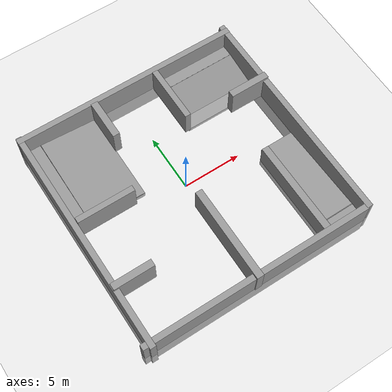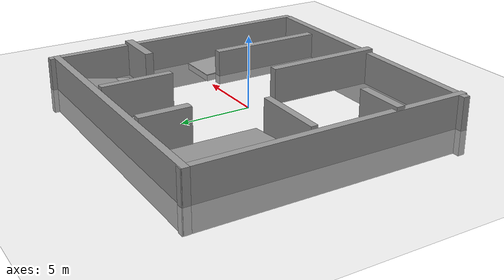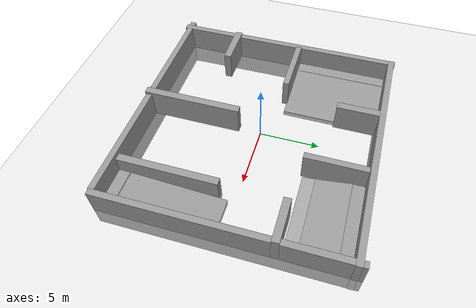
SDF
<sdf version="1.7">
 <world name="default">
  <light name="sun" type="directional">
   <pose>0 0 10 0 -0 0</pose>
   <diffuse>0.8 0.8 0.8 1</diffuse>
   <specular>0.2 0.2 0.2 1</specular>
   <attenuation>
    <range>1000</range>
    <constant>0.9</constant>
    <linear>0.01</linear>
    <quadratic>0.001</quadratic>
   </attenuation>
   <direction>-0.5 0.1 -0.9</direction>
   <spot><inner_angle>0</inner_angle><outer_angle>0</outer_angle><falloff>0</falloff></spot>
  </light>
  <model name="ground_plane">
   <static>1</static>
   <link name="link">
    <collision name="collision">
     <geometry><plane><normal>0 0 1</normal><size>100 100</size></plane></geometry>
     <surface>
      <contact><collide_bitmask>65535</collide_bitmask></contact>
      <friction><ode><mu>50</mu><mu2>50</mu2></ode></friction>
     </surface>
     <max_contacts>50</max_contacts>
    </collision>
    <visual name="visual">
     <cast_shadows>0</cast_shadows>
     <geometry><plane><normal>0 0 1</normal><size>100 100</size></plane></geometry>
     <material>
      <script><uri>file://media/materials/scripts/gazebo.material</uri><name>Gazebo/Grey</name></script>
     </material>
    </visual>
   </link>
  </model>
  <gravity>0 0 -9.8</gravity>
  <magnetic_field>6e-06 2.3e-05 -4.2e-05</magnetic_field>
  <atmosphere type="adiabatic"/>
  <physics type="ode">
   <max_step_size>0.001</max_step_size>
   <real_time_factor>1</real_time_factor>
   <real_time_update_rate>1000</real_time_update_rate>
  </physics>
  <scene><ambient>0.4 0.4 0.4 1</ambient><background>0.7 0.7 0.7 1</background><shadows>1</shadows></scene>
  <spherical_coordinates>
   <surface_model>EARTH_WGS84</surface_model>
   <latitude_deg>0</latitude_deg>
   <longitude_deg>0</longitude_deg>
   <elevation>0</elevation>
   <heading_deg>0</heading_deg>
  </spherical_coordinates>
  <model name="unit_box_4_0">
   <static>1</static>
   <link name="link">
    <inertial>
     <mass>1</mass>
     <inertia>
      <ixx>0.166667</ixx>
      <ixy>0</ixy>
      <ixz>0</ixz>
      <iyy>0.166667</iyy>
      <iyz>0</iyz>
      <izz>0.166667</izz>
     </inertia>
    </inertial>
    <visual name="visual">
     <geometry><box><size>3 1 0.5</size></box></geometry>
     <material>
      <script><name>Gazebo/Grey</name><uri>file://media/materials/scripts/gazebo.material</uri></script>
      <shader type="pixel"><normal_map>__default__</normal_map></shader>
      <ambient>0.3 0.3 0.3 1</ambient>
      <diffuse>0.7 0.7 0.7 1</diffuse>
      <specular>0.01 0.01 0.01 1</specular>
      <emissive>0 0 0 1</emissive>
     </material>
    </visual>
    <collision name="collision">
     <max_contacts>50</max_contacts>
     <geometry><box><size>3 1 0.5</size></box></geometry>
     <surface>
      <friction>
       <ode><mu>50</mu><mu2>50</mu2><fdir1>0 0 0</fdir1><slip1>0</slip1><slip2>0</slip2></ode>
       <torsional>
        <coefficient>1</coefficient>
        <patch_radius>0</patch_radius>
        <surface_radius>0</surface_radius>
        <use_patch_radius>1</use_patch_radius>
        <ode><slip>0</slip></ode>
       </torsional>
      </friction>
      <bounce><restitution_coefficient>0</restitution_coefficient><threshold>1e+06</threshold></bounce>
      <contact>
       <collide_without_contact>0</collide_without_contact>
       <collide_without_contact_bitmask>1</collide_without_contact_bitmask>
       <collide_bitmask>1</collide_bitmask>
       <ode>
        <soft_cfm>0</soft_cfm>
        <soft_erp>0.2</soft_erp>
        <kp>1e+13</kp>
        <kd>1</kd>
        <max_vel>0.01</max_vel>
        <min_depth>0</min_depth>
       </ode>
       <bullet>
        <split_impulse>1</split_impulse>
        <split_impulse_penetration_threshold>-0.01</split_impulse_penetration_threshold>
        <soft_cfm>0</soft_cfm>
        <soft_erp>0.2</soft_erp>
        <kp>1e+13</kp>
        <kd>1</kd>
       </bullet>
      </contact>
     </surface>
    </collision>
   </link>
   <static>1</static>
   <pose>8.41088 -9.00456 0.250005 -1e-05 0 0</pose>
  </model>
  <model name="unit_box_up1">
   <link name="link">
    <inertial>
     <mass>1</mass>
     <inertia>
      <ixx>0.166667</ixx>
      <ixy>0</ixy>
      <ixz>0</ixz>
      <iyy>0.166667</iyy>
      <iyz>0</iyz>
      <izz>0.166667</izz>
     </inertia>
    </inertial>
    <visual name="visual">
     <geometry><box><size>3 8 0.5</size></box></geometry>
     <material>
      <script><name>Gazebo/Grey</name><uri>file://media/materials/scripts/gazebo.material</uri></script>
      <shader type="pixel"><normal_map>__default__</normal_map></shader>
      <ambient>0.3 0.3 0.3 1</ambient>
      <diffuse>0.7 0.7 0.7 1</diffuse>
      <specular>0.01 0.01 0.01 1</specular>
      <emissive>0 0 0 1</emissive>
     </material>
    </visual>
    <collision name="collision">
     <max_contacts>50</max_contacts>
     <geometry><box><size>3 8 0.5</size></box></geometry>
     <surface>
      <friction>
       <ode><mu>50</mu><mu2>50</mu2><fdir1>0 0 0</fdir1><slip1>0</slip1><slip2>0</slip2></ode>
       <torsional>
        <coefficient>1</coefficient>
        <patch_radius>0</patch_radius>
        <surface_radius>0</surface_radius>
        <use_patch_radius>1</use_patch_radius>
        <ode><slip>0</slip></ode>
       </torsional>
      </friction>
      <bounce><restitution_coefficient>0</restitution_coefficient><threshold>1e+06</threshold></bounce>
      <contact>
       <collide_without_contact>0</collide_without_contact>
       <collide_without_contact_bitmask>1</collide_without_contact_bitmask>
       <collide_bitmask>1</collide_bitmask>
       <ode>
        <soft_cfm>0</soft_cfm>
        <soft_erp>0.2</soft_erp>
        <kp>1e+13</kp>
        <kd>1</kd>
        <max_vel>0.01</max_vel>
        <min_depth>0</min_depth>
       </ode>
       <bullet>
        <split_impulse>1</split_impulse>
        <split_impulse_penetration_threshold>-0.01</split_impulse_penetration_threshold>
        <soft_cfm>0</soft_cfm>
        <soft_erp>0.2</soft_erp>
        <kp>1e+13</kp>
        <kd>1</kd>
       </bullet>
      </contact>
     </surface>
    </collision>
   </link>
   <static>1</static>
   <pose>8.41177 -4.6 0.002881 -0.062458 0 0</pose>
  </model>
  <model name="unit_box_wall">
   <link name="link">
    <inertial>
     <mass>1</mass>
     <inertia>
      <ixx>0.166667</ixx>
      <ixy>0</ixy>
      <ixz>0</ixz>
      <iyy>0.166667</iyy>
      <iyz>0</iyz>
      <izz>0.166667</izz>
     </inertia>
    </inertial>
    <visual name="visual">
     <geometry><box><size>0.5 20 4</size></box></geometry>
     <material>
      <script><name>Gazebo/Grey</name><uri>file://media/materials/scripts/gazebo.material</uri></script>
      <shader type="pixel"><normal_map>__default__</normal_map></shader>
      <ambient>0.3 0.3 0.3 1</ambient>
      <diffuse>0.7 0.7 0.7 1</diffuse>
      <specular>0.01 0.01 0.01 1</specular>
      <emissive>0 0 0 1</emissive>
     </material>
    </visual>
    <collision name="collision">
     <max_contacts>50</max_contacts>
     <geometry><box><size>0.5 20 4</size></box></geometry>
     <surface>
      <friction>
       <ode><mu>50</mu><mu2>50</mu2><fdir1>0 0 0</fdir1><slip1>0</slip1><slip2>0</slip2></ode>
       <torsional>
        <coefficient>1</coefficient>
        <patch_radius>0</patch_radius>
        <surface_radius>0</surface_radius>
        <use_patch_radius>1</use_patch_radius>
        <ode><slip>0</slip></ode>
       </torsional>
      </friction>
      <bounce><restitution_coefficient>0</restitution_coefficient><threshold>1e+06</threshold></bounce>
      <contact>
       <collide_without_contact>0</collide_without_contact>
       <collide_without_contact_bitmask>1</collide_without_contact_bitmask>
       <collide_bitmask>1</collide_bitmask>
       <ode>
        <soft_cfm>0</soft_cfm>
        <soft_erp>0.2</soft_erp>
        <kp>1e+13</kp>
        <kd>1</kd>
        <max_vel>0.01</max_vel>
        <min_depth>0</min_depth>
       </ode>
       <bullet>
        <split_impulse>1</split_impulse>
        <split_impulse_penetration_threshold>-0.01</split_impulse_penetration_threshold>
        <soft_cfm>0</soft_cfm>
        <soft_erp>0.2</soft_erp>
        <kp>1e+13</kp>
        <kd>1</kd>
       </bullet>
      </contact>
     </surface>
    </collision>
   </link>
   <static>1</static>
   <pose>0.012952 -9.73 0.249963 -0 -1e-05 -1.57449</pose>
  </model>
  <model name="unit_box_wall_clone">
   <link name="link">
    <inertial>
     <mass>1</mass>
     <inertia>
      <ixx>0.166667</ixx>
      <ixy>0</ixy>
      <ixz>0</ixz>
      <iyy>0.166667</iyy>
      <iyz>0</iyz>
      <izz>0.166667</izz>
     </inertia>
    </inertial>
    <visual name="visual">
     <geometry><box><size>0.5 20 4</size></box></geometry>
     <material>
      <script><name>Gazebo/Grey</name><uri>file://media/materials/scripts/gazebo.material</uri></script>
      <shader type="pixel"><normal_map>__default__</normal_map></shader>
      <ambient>0.3 0.3 0.3 1</ambient>
      <diffuse>0.7 0.7 0.7 1</diffuse>
      <specular>0.01 0.01 0.01 1</specular>
      <emissive>0 0 0 1</emissive>
     </material>
    </visual>
    <collision name="collision">
     <max_contacts>50</max_contacts>
     <geometry><box><size>0.5 20 4</size></box></geometry>
     <surface>
      <friction>
       <ode><mu>50</mu><mu2>50</mu2><fdir1>0 0 0</fdir1><slip1>0</slip1><slip2>0</slip2></ode>
       <torsional>
        <coefficient>1</coefficient>
        <patch_radius>0</patch_radius>
        <surface_radius>0</surface_radius>
        <use_patch_radius>1</use_patch_radius>
        <ode><slip>0</slip></ode>
       </torsional>
      </friction>
      <bounce><restitution_coefficient>0</restitution_coefficient><threshold>1e+06</threshold></bounce>
      <contact>
       <collide_without_contact>0</collide_without_contact>
       <collide_without_contact_bitmask>1</collide_without_contact_bitmask>
       <collide_bitmask>1</collide_bitmask>
       <ode>
        <soft_cfm>0</soft_cfm>
        <soft_erp>0.2</soft_erp>
        <kp>1e+13</kp>
        <kd>1</kd>
        <max_vel>0.01</max_vel>
        <min_depth>0</min_depth>
       </ode>
       <bullet>
        <split_impulse>1</split_impulse>
        <split_impulse_penetration_threshold>-0.01</split_impulse_penetration_threshold>
        <soft_cfm>0</soft_cfm>
        <soft_erp>0.2</soft_erp>
        <kp>1e+13</kp>
        <kd>1</kd>
       </bullet>
      </contact>
     </surface>
    </collision>
   </link>
   <static>1</static>
   <pose>10.1456 0.068655 0.24996 1e-05 -0 -3.13792</pose>
  </model>
  <model name="unit_box_wall_clone_clone">
   <link name="link">
    <inertial>
     <mass>1</mass>
     <inertia>
      <ixx>0.166667</ixx>
      <ixy>0</ixy>
      <ixz>0</ixz>
      <iyy>0.166667</iyy>
      <iyz>0</iyz>
      <izz>0.166667</izz>
     </inertia>
    </inertial>
    <visual name="visual">
     <geometry><box><size>0.5 20 4</size></box></geometry>
     <material>
      <script><name>Gazebo/Grey</name><uri>file://media/materials/scripts/gazebo.material</uri></script>
      <shader type="pixel"><normal_map>__default__</normal_map></shader>
      <ambient>0.3 0.3 0.3 1</ambient>
      <diffuse>0.7 0.7 0.7 1</diffuse>
      <specular>0.01 0.01 0.01 1</specular>
      <emissive>0 0 0 1</emissive>
     </material>
    </visual>
    <collision name="collision">
     <max_contacts>50</max_contacts>
     <geometry><box><size>0.5 20 4</size></box></geometry>
     <surface>
      <friction>
       <ode><mu>50</mu><mu2>50</mu2><fdir1>0 0 0</fdir1><slip1>0</slip1><slip2>0</slip2></ode>
       <torsional>
        <coefficient>1</coefficient>
        <patch_radius>0</patch_radius>
        <surface_radius>0</surface_radius>
        <use_patch_radius>1</use_patch_radius>
        <ode><slip>0</slip></ode>
       </torsional>
      </friction>
      <bounce><restitution_coefficient>0</restitution_coefficient><threshold>1e+06</threshold></bounce>
      <contact>
       <collide_without_contact>0</collide_without_contact>
       <collide_without_contact_bitmask>1</collide_without_contact_bitmask>
       <collide_bitmask>1</collide_bitmask>
       <ode>
        <soft_cfm>0</soft_cfm>
        <soft_erp>0.2</soft_erp>
        <kp>1e+13</kp>
        <kd>1</kd>
        <max_vel>0.01</max_vel>
        <min_depth>0</min_depth>
       </ode>
       <bullet>
        <split_impulse>1</split_impulse>
        <split_impulse_penetration_threshold>-0.01</split_impulse_penetration_threshold>
        <soft_cfm>0</soft_cfm>
        <soft_erp>0.2</soft_erp>
        <kp>1e+13</kp>
        <kd>1</kd>
       </bullet>
      </contact>
     </surface>
    </collision>
   </link>
   <static>1</static>
   <pose>-9.31128 -0.137348 0.24996 1e-05 -0 -3.13792</pose>
  </model>
  <model name="unit_box_wall_clone_0">
   <link name="link">
    <inertial>
     <mass>1</mass>
     <inertia>
      <ixx>0.166667</ixx>
      <ixy>0</ixy>
      <ixz>0</ixz>
      <iyy>0.166667</iyy>
      <iyz>0</iyz>
      <izz>0.166667</izz>
     </inertia>
    </inertial>
    <visual name="visual">
     <geometry><box><size>0.5 20 4</size></box></geometry>
     <material>
      <script><name>Gazebo/Grey</name><uri>file://media/materials/scripts/gazebo.material</uri></script>
      <shader type="pixel"><normal_map>__default__</normal_map></shader>
      <ambient>0.3 0.3 0.3 1</ambient>
      <diffuse>0.7 0.7 0.7 1</diffuse>
      <specular>0.01 0.01 0.01 1</specular>
      <emissive>0 0 0 1</emissive>
     </material>
    </visual>
    <collision name="collision">
     <max_contacts>50</max_contacts>
     <geometry><box><size>0.5 20 4</size></box></geometry>
     <surface>
      <friction>
       <ode><mu>50</mu><mu2>50</mu2><fdir1>0 0 0</fdir1><slip1>0</slip1><slip2>0</slip2></ode>
       <torsional>
        <coefficient>1</coefficient>
        <patch_radius>0</patch_radius>
        <surface_radius>0</surface_radius>
        <use_patch_radius>1</use_patch_radius>
        <ode><slip>0</slip></ode>
       </torsional>
      </friction>
      <bounce><restitution_coefficient>0</restitution_coefficient><threshold>1e+06</threshold></bounce>
      <contact>
       <collide_without_contact>0</collide_without_contact>
       <collide_without_contact_bitmask>1</collide_without_contact_bitmask>
       <collide_bitmask>1</collide_bitmask>
       <ode>
        <soft_cfm>0</soft_cfm>
        <soft_erp>0.2</soft_erp>
        <kp>1e+13</kp>
        <kd>1</kd>
        <max_vel>0.01</max_vel>
        <min_depth>0</min_depth>
       </ode>
       <bullet>
        <split_impulse>1</split_impulse>
        <split_impulse_penetration_threshold>-0.01</split_impulse_penetration_threshold>
        <soft_cfm>0</soft_cfm>
        <soft_erp>0.2</soft_erp>
        <kp>1e+13</kp>
        <kd>1</kd>
       </bullet>
      </contact>
     </surface>
    </collision>
   </link>
   <static>1</static>
   <pose>0.386484 9.51271 0.249963 -0 -1e-05 -1.57449</pose>
  </model>
  <model name="unit_box_up2">
   <link name="link">
    <inertial>
     <mass>1</mass>
     <inertia>
      <ixx>0.166667</ixx>
      <ixy>0</ixy>
      <ixz>0</ixz>
      <iyy>0.166667</iyy>
      <iyz>0</iyz>
      <izz>0.166667</izz>
     </inertia>
    </inertial>
    <visual name="visual">
     <geometry><box><size>8 5 0.5</size></box></geometry>
     <material>
      <script><name>Gazebo/Grey</name><uri>file://media/materials/scripts/gazebo.material</uri></script>
      <shader type="pixel"><normal_map>__default__</normal_map></shader>
      <ambient>0.3 0.3 0.3 1</ambient>
      <diffuse>0.7 0.7 0.7 1</diffuse>
      <specular>0.01 0.01 0.01 1</specular>
      <emissive>0 0 0 1</emissive>
     </material>
    </visual>
    <collision name="collision">
     <max_contacts>50</max_contacts>
     <geometry><box><size>8 5 0.5</size></box></geometry>
     <surface>
      <friction>
       <ode><mu>50</mu><mu2>50</mu2><fdir1>0 0 0</fdir1><slip1>0</slip1><slip2>0</slip2></ode>
       <torsional>
        <coefficient>1</coefficient>
        <patch_radius>0</patch_radius>
        <surface_radius>0</surface_radius>
        <use_patch_radius>1</use_patch_radius>
        <ode><slip>0</slip></ode>
       </torsional>
      </friction>
      <bounce><restitution_coefficient>0</restitution_coefficient><threshold>1e+06</threshold></bounce>
      <contact>
       <collide_without_contact>0</collide_without_contact>
       <collide_without_contact_bitmask>1</collide_without_contact_bitmask>
       <collide_bitmask>1</collide_bitmask>
       <ode>
        <soft_cfm>0</soft_cfm>
        <soft_erp>0.2</soft_erp>
        <kp>1e+13</kp>
        <kd>1</kd>
        <max_vel>0.01</max_vel>
        <min_depth>0</min_depth>
       </ode>
       <bullet>
        <split_impulse>1</split_impulse>
        <split_impulse_penetration_threshold>-0.01</split_impulse_penetration_threshold>
        <soft_cfm>0</soft_cfm>
        <soft_erp>0.2</soft_erp>
        <kp>1e+13</kp>
        <kd>1</kd>
       </bullet>
      </contact>
     </surface>
    </collision>
   </link>
   <static>1</static>
   <pose>-5.54092 5.2947 0.008517 -0.098066 -1e-05 -1.57449</pose>
  </model>
  <model name="unit_box_0_clone">
   <link name="link">
    <inertial>
     <mass>1</mass>
     <inertia>
      <ixx>0.166667</ixx>
      <ixy>0</ixy>
      <ixz>0</ixz>
      <iyy>0.166667</iyy>
      <iyz>0</iyz>
      <izz>0.166667</izz>
     </inertia>
    </inertial>
    <visual name="visual">
     <geometry><box><size>8 1 0.5</size></box></geometry>
     <material>
      <script><name>Gazebo/Grey</name><uri>file://media/materials/scripts/gazebo.material</uri></script>
      <shader type="pixel"><normal_map>__default__</normal_map></shader>
      <ambient>0.3 0.3 0.3 1</ambient>
      <diffuse>0.7 0.7 0.7 1</diffuse>
      <specular>0.01 0.01 0.01 1</specular>
      <emissive>0 0 0 1</emissive>
     </material>
    </visual>
    <collision name="collision">
     <max_contacts>50</max_contacts>
     <geometry><box><size>8 1 0.5</size></box></geometry>
     <surface>
      <friction>
       <ode><mu>50</mu><mu2>50</mu2><fdir1>0 0 0</fdir1><slip1>0</slip1><slip2>0</slip2></ode>
       <torsional>
        <coefficient>1</coefficient>
        <patch_radius>0</patch_radius>
        <surface_radius>0</surface_radius>
        <use_patch_radius>1</use_patch_radius>
        <ode><slip>0</slip></ode>
       </torsional>
      </friction>
      <bounce><restitution_coefficient>0</restitution_coefficient><threshold>1e+06</threshold></bounce>
      <contact>
       <collide_without_contact>0</collide_without_contact>
       <collide_without_contact_bitmask>1</collide_without_contact_bitmask>
       <collide_bitmask>1</collide_bitmask>
       <ode>
        <soft_cfm>0</soft_cfm>
        <soft_erp>0.2</soft_erp>
        <kp>1e+13</kp>
        <kd>1</kd>
        <max_vel>0.01</max_vel>
        <min_depth>0</min_depth>
       </ode>
       <bullet>
        <split_impulse>1</split_impulse>
        <split_impulse_penetration_threshold>-0.01</split_impulse_penetration_threshold>
        <soft_cfm>0</soft_cfm>
        <soft_erp>0.2</soft_erp>
        <kp>1e+13</kp>
        <kd>1</kd>
       </bullet>
      </contact>
     </surface>
    </collision>
   </link>
   <static>1</static>
   <pose>-8.52278 5.32292 0.249858 -1e-05 -0 1.57</pose>
  </model>
  <model name="unit_box_0">
   <link name="link">
    <inertial>
     <mass>1</mass>
     <inertia>
      <ixx>0.166667</ixx>
      <ixy>0</ixy>
      <ixz>0</ixz>
      <iyy>0.166667</iyy>
      <iyz>0</iyz>
      <izz>0.166667</izz>
     </inertia>
    </inertial>
    <visual name="visual">
     <geometry><box><size>7 1 0.5</size></box></geometry>
     <material>
      <script><name>Gazebo/Grey</name><uri>file://media/materials/scripts/gazebo.material</uri></script>
      <shader type="pixel"><normal_map>__default__</normal_map></shader>
      <ambient>0.3 0.3 0.3 1</ambient>
      <diffuse>0.7 0.7 0.7 1</diffuse>
      <specular>0.01 0.01 0.01 1</specular>
      <emissive>0 0 0 1</emissive>
     </material>
    </visual>
    <collision name="collision">
     <max_contacts>50</max_contacts>
     <geometry><box><size>7 1 0.5</size></box></geometry>
     <surface>
      <friction>
       <ode><mu>50</mu><mu2>50</mu2><fdir1>0 0 0</fdir1><slip1>0</slip1><slip2>0</slip2></ode>
       <torsional>
        <coefficient>1</coefficient>
        <patch_radius>0</patch_radius>
        <surface_radius>0</surface_radius>
        <use_patch_radius>1</use_patch_radius>
        <ode><slip>0</slip></ode>
       </torsional>
      </friction>
      <bounce><restitution_coefficient>0</restitution_coefficient><threshold>1e+06</threshold></bounce>
      <contact>
       <collide_without_contact>0</collide_without_contact>
       <collide_without_contact_bitmask>1</collide_without_contact_bitmask>
       <collide_bitmask>1</collide_bitmask>
       <ode>
        <soft_cfm>0</soft_cfm>
        <soft_erp>0.2</soft_erp>
        <kp>1e+13</kp>
        <kd>1</kd>
        <max_vel>0.01</max_vel>
        <min_depth>0</min_depth>
       </ode>
       <bullet>
        <split_impulse>1</split_impulse>
        <split_impulse_penetration_threshold>-0.01</split_impulse_penetration_threshold>
        <soft_cfm>0</soft_cfm>
        <soft_erp>0.2</soft_erp>
        <kp>1e+13</kp>
        <kd>1</kd>
       </bullet>
      </contact>
     </surface>
    </collision>
   </link>
   <static>1</static>
   <pose>6.68114 8.7452 0.252464 -1e-05 0 0</pose>
  </model>
  <model name="unit_box_slop2">
   <link name="link">
    <inertial>
     <mass>1</mass>
     <inertia>
      <ixx>0.166667</ixx>
      <ixy>0</ixy>
      <ixz>0</ixz>
      <iyy>0.166667</iyy>
      <iyz>0</iyz>
      <izz>0.166667</izz>
     </inertia>
    </inertial>
    <visual name="visual">
     <geometry><box><size>6.75 4 0.5</size></box></geometry>
     <material>
      <script><name>Gazebo/Grey</name><uri>file://media/materials/scripts/gazebo.material</uri></script>
      <shader type="pixel"><normal_map>__default__</normal_map></shader>
      <ambient>0.3 0.3 0.3 1</ambient>
      <diffuse>0.7 0.7 0.7 1</diffuse>
      <specular>0.01 0.01 0.01 1</specular>
      <emissive>0 0 0 1</emissive>
     </material>
    </visual>
    <collision name="collision">
     <max_contacts>50</max_contacts>
     <geometry><box><size>6.75 4 0.5</size></box></geometry>
     <surface>
      <friction>
       <ode><mu>50</mu><mu2>50</mu2><fdir1>0 0 0</fdir1><slip1>0</slip1><slip2>0</slip2></ode>
       <torsional>
        <coefficient>1</coefficient>
        <patch_radius>0</patch_radius>
        <surface_radius>0</surface_radius>
        <use_patch_radius>1</use_patch_radius>
        <ode><slip>0</slip></ode>
       </torsional>
      </friction>
      <bounce><restitution_coefficient>0</restitution_coefficient><threshold>1e+06</threshold></bounce>
      <contact>
       <collide_without_contact>0</collide_without_contact>
       <collide_without_contact_bitmask>1</collide_without_contact_bitmask>
       <collide_bitmask>1</collide_bitmask>
       <ode>
        <soft_cfm>0</soft_cfm>
        <soft_erp>0.2</soft_erp>
        <kp>1e+13</kp>
        <kd>1</kd>
        <max_vel>0.01</max_vel>
        <min_depth>0</min_depth>
       </ode>
       <bullet>
        <split_impulse>1</split_impulse>
        <split_impulse_penetration_threshold>-0.01</split_impulse_penetration_threshold>
        <soft_cfm>0</soft_cfm>
        <soft_erp>0.2</soft_erp>
        <kp>1e+13</kp>
        <kd>1</kd>
       </bullet>
      </contact>
     </surface>
    </collision>
   </link>
   <static>1</static>
   <pose>6.543 6.35 -0.105027 0.182583 -0 0</pose>
  </model>
  <model name="unit_box_3_clone_clone_1_clone_clone">
   <link name="link">
    <inertial>
     <mass>1</mass>
     <inertia>
      <ixx>0.166667</ixx>
      <ixy>0</ixy>
      <ixz>0</ixz>
      <iyy>0.166667</iyy>
      <iyz>0</iyz>
      <izz>0.166667</izz>
     </inertia>
    </inertial>
    <visual name="visual">
     <geometry><box><size>0.5 5 2.5</size></box></geometry>
     <material>
      <script><name>Gazebo/Grey</name><uri>file://media/materials/scripts/gazebo.material</uri></script>
      <shader type="pixel"><normal_map>__default__</normal_map></shader>
      <ambient>0.3 0.3 0.3 1</ambient>
      <diffuse>0.7 0.7 0.7 1</diffuse>
      <specular>0.01 0.01 0.01 1</specular>
      <emissive>0 0 0 1</emissive>
     </material>
    </visual>
    <collision name="collision">
     <max_contacts>50</max_contacts>
     <geometry><box><size>0.5 5 2.5</size></box></geometry>
     <surface>
      <friction>
       <ode><mu>50</mu><mu2>50</mu2><fdir1>0 0 0</fdir1><slip1>0</slip1><slip2>0</slip2></ode>
       <torsional>
        <coefficient>1</coefficient>
        <patch_radius>0</patch_radius>
        <surface_radius>0</surface_radius>
        <use_patch_radius>1</use_patch_radius>
        <ode><slip>0</slip></ode>
       </torsional>
      </friction>
      <bounce><restitution_coefficient>0</restitution_coefficient><threshold>1e+06</threshold></bounce>
      <contact>
       <collide_without_contact>0</collide_without_contact>
       <collide_without_contact_bitmask>1</collide_without_contact_bitmask>
       <collide_bitmask>1</collide_bitmask>
       <ode>
        <soft_cfm>0</soft_cfm>
        <soft_erp>0.2</soft_erp>
        <kp>1e+13</kp>
        <kd>1</kd>
        <max_vel>0.01</max_vel>
        <min_depth>0</min_depth>
       </ode>
       <bullet>
        <split_impulse>1</split_impulse>
        <split_impulse_penetration_threshold>-0.01</split_impulse_penetration_threshold>
        <soft_cfm>0</soft_cfm>
        <soft_erp>0.2</soft_erp>
        <kp>1e+13</kp>
        <kd>1</kd>
       </bullet>
      </contact>
     </surface>
    </collision>
   </link>
   <static>1</static>
   <pose>-6.53966 1.10932 1.17542 -0 -1e-05 -1.57449</pose>
  </model>
  <model name="unit_box_8">
   <link name="link">
    <inertial>
     <mass>1</mass>
     <inertia>
      <ixx>0.166667</ixx>
      <ixy>0</ixy>
      <ixz>0</ixz>
      <iyy>0.166667</iyy>
      <iyz>0</iyz>
      <izz>0.166667</izz>
     </inertia>
    </inertial>
    <visual name="visual">
     <geometry><box><size>0.6 8.2 2.5</size></box></geometry>
     <material>
      <script><name>Gazebo/Grey</name><uri>file://media/materials/scripts/gazebo.material</uri></script>
      <shader type="pixel"><normal_map>__default__</normal_map></shader>
      <ambient>0.3 0.3 0.3 1</ambient>
      <diffuse>0.7 0.7 0.7 1</diffuse>
      <specular>0.01 0.01 0.01 1</specular>
      <emissive>0 0 0 1</emissive>
     </material>
    </visual>
    <collision name="collision">
     <max_contacts>50</max_contacts>
     <geometry><box><size>0.6 8.2 2.5</size></box></geometry>
     <surface>
      <friction>
       <ode><mu>50</mu><mu2>50</mu2><fdir1>0 0 0</fdir1><slip1>0</slip1><slip2>0</slip2></ode>
       <torsional>
        <coefficient>1</coefficient>
        <patch_radius>0</patch_radius>
        <surface_radius>0</surface_radius>
        <use_patch_radius>1</use_patch_radius>
        <ode><slip>0</slip></ode>
       </torsional>
      </friction>
      <bounce><restitution_coefficient>0</restitution_coefficient><threshold>1e+06</threshold></bounce>
      <contact>
       <collide_without_contact>0</collide_without_contact>
       <collide_without_contact_bitmask>1</collide_without_contact_bitmask>
       <collide_bitmask>1</collide_bitmask>
       <ode>
        <soft_cfm>0</soft_cfm>
        <soft_erp>0.2</soft_erp>
        <kp>1e+13</kp>
        <kd>1</kd>
        <max_vel>0.01</max_vel>
        <min_depth>0</min_depth>
       </ode>
       <bullet>
        <split_impulse>1</split_impulse>
        <split_impulse_penetration_threshold>-0.01</split_impulse_penetration_threshold>
        <soft_cfm>0</soft_cfm>
        <soft_erp>0.2</soft_erp>
        <kp>1e+13</kp>
        <kd>1</kd>
       </bullet>
      </contact>
     </surface>
    </collision>
   </link>
   <static>1</static>
   <pose>6.59307 -5.4024 0.580735 0 -0 0</pose>
  </model>
  <model name="unit_box_3_clone_clone_clone_clone">
   <link name="link">
    <inertial>
     <mass>1</mass>
     <inertia>
      <ixx>0.166667</ixx>
      <ixy>0</ixy>
      <ixz>0</ixz>
      <iyy>0.166667</iyy>
      <iyz>0</iyz>
      <izz>0.166667</izz>
     </inertia>
    </inertial>
    <visual name="visual">
     <geometry><box><size>0.6 3.5 2.5</size></box></geometry>
     <material>
      <script><name>Gazebo/Grey</name><uri>file://media/materials/scripts/gazebo.material</uri></script>
      <shader type="pixel"><normal_map>__default__</normal_map></shader>
      <ambient>0.3 0.3 0.3 1</ambient>
      <diffuse>0.7 0.7 0.7 1</diffuse>
      <specular>0.01 0.01 0.01 1</specular>
      <emissive>0 0 0 1</emissive>
     </material>
    </visual>
    <collision name="collision">
     <max_contacts>50</max_contacts>
     <geometry><box><size>0.6 3.5 2.5</size></box></geometry>
     <surface>
      <friction>
       <ode><mu>50</mu><mu2>50</mu2><fdir1>0 0 0</fdir1><slip1>0</slip1><slip2>0</slip2></ode>
       <torsional>
        <coefficient>1</coefficient>
        <patch_radius>0</patch_radius>
        <surface_radius>0</surface_radius>
        <use_patch_radius>1</use_patch_radius>
        <ode><slip>0</slip></ode>
       </torsional>
      </friction>
      <bounce><restitution_coefficient>0</restitution_coefficient><threshold>1e+06</threshold></bounce>
      <contact>
       <collide_without_contact>0</collide_without_contact>
       <collide_without_contact_bitmask>1</collide_without_contact_bitmask>
       <collide_bitmask>1</collide_bitmask>
       <ode>
        <soft_cfm>0</soft_cfm>
        <soft_erp>0.2</soft_erp>
        <kp>1e+13</kp>
        <kd>1</kd>
        <max_vel>0.01</max_vel>
        <min_depth>0</min_depth>
       </ode>
       <bullet>
        <split_impulse>1</split_impulse>
        <split_impulse_penetration_threshold>-0.01</split_impulse_penetration_threshold>
        <soft_cfm>0</soft_cfm>
        <soft_erp>0.2</soft_erp>
        <kp>1e+13</kp>
        <kd>1</kd>
       </bullet>
      </contact>
     </surface>
    </collision>
   </link>
   <static>1</static>
   <pose>-7.7257 -4.82448 1.22408 0 -0 1.57</pose>
  </model>
  <model name="unit_box_8_clone">
   <link name="link">
    <inertial>
     <mass>1</mass>
     <inertia>
      <ixx>0.166667</ixx>
      <ixy>0</ixy>
      <ixz>0</ixz>
      <iyy>0.166667</iyy>
      <iyz>0</iyz>
      <izz>0.166667</izz>
     </inertia>
    </inertial>
    <visual name="visual">
     <geometry><box><size>0.6 8.2 2.5</size></box></geometry>
     <material>
      <script><name>Gazebo/Grey</name><uri>file://media/materials/scripts/gazebo.material</uri></script>
      <shader type="pixel"><normal_map>__default__</normal_map></shader>
      <ambient>0.3 0.3 0.3 1</ambient>
      <diffuse>0.7 0.7 0.7 1</diffuse>
      <specular>0.01 0.01 0.01 1</specular>
      <emissive>0 0 0 1</emissive>
     </material>
    </visual>
    <collision name="collision">
     <max_contacts>50</max_contacts>
     <geometry><box><size>0.6 8.2 2.5</size></box></geometry>
     <surface>
      <friction>
       <ode><mu>50</mu><mu2>50</mu2><fdir1>0 0 0</fdir1><slip1>0</slip1><slip2>0</slip2></ode>
       <torsional>
        <coefficient>1</coefficient>
        <patch_radius>0</patch_radius>
        <surface_radius>0</surface_radius>
        <use_patch_radius>1</use_patch_radius>
        <ode><slip>0</slip></ode>
       </torsional>
      </friction>
      <bounce><restitution_coefficient>0</restitution_coefficient><threshold>1e+06</threshold></bounce>
      <contact>
       <collide_without_contact>0</collide_without_contact>
       <collide_without_contact_bitmask>1</collide_without_contact_bitmask>
       <collide_bitmask>1</collide_bitmask>
       <ode>
        <soft_cfm>0</soft_cfm>
        <soft_erp>0.2</soft_erp>
        <kp>1e+13</kp>
        <kd>1</kd>
        <max_vel>0.01</max_vel>
        <min_depth>0</min_depth>
       </ode>
       <bullet>
        <split_impulse>1</split_impulse>
        <split_impulse_penetration_threshold>-0.01</split_impulse_penetration_threshold>
        <soft_cfm>0</soft_cfm>
        <soft_erp>0.2</soft_erp>
        <kp>1e+13</kp>
        <kd>1</kd>
       </bullet>
      </contact>
     </surface>
    </collision>
   </link>
   <static>1</static>
   <pose>-0.058696 -5.9512 1.24018 0 -0 0</pose>
  </model>
  <model name="unit_box_3_clone_clone_clone_clone_0">
   <link name="link">
    <inertial>
     <mass>1</mass>
     <inertia>
      <ixx>0.166667</ixx>
      <ixy>0</ixy>
      <ixz>0</ixz>
      <iyy>0.166667</iyy>
      <iyz>0</iyz>
      <izz>0.166667</izz>
     </inertia>
    </inertial>
    <visual name="visual">
     <geometry><box><size>0.6 3.5 2.5</size></box></geometry>
     <material>
      <script><name>Gazebo/Grey</name><uri>file://media/materials/scripts/gazebo.material</uri></script>
      <shader type="pixel"><normal_map>__default__</normal_map></shader>
      <ambient>0.3 0.3 0.3 1</ambient>
      <diffuse>0.7 0.7 0.7 1</diffuse>
      <specular>0.01 0.01 0.01 1</specular>
      <emissive>0 0 0 1</emissive>
     </material>
    </visual>
    <collision name="collision">
     <max_contacts>50</max_contacts>
     <geometry><box><size>0.6 3.5 2.5</size></box></geometry>
     <surface>
      <friction>
       <ode><mu>50</mu><mu2>50</mu2><fdir1>0 0 0</fdir1><slip1>0</slip1><slip2>0</slip2></ode>
       <torsional>
        <coefficient>1</coefficient>
        <patch_radius>0</patch_radius>
        <surface_radius>0</surface_radius>
        <use_patch_radius>1</use_patch_radius>
        <ode><slip>0</slip></ode>
       </torsional>
      </friction>
      <bounce><restitution_coefficient>0</restitution_coefficient><threshold>1e+06</threshold></bounce>
      <contact>
       <collide_without_contact>0</collide_without_contact>
       <collide_without_contact_bitmask>1</collide_without_contact_bitmask>
       <collide_bitmask>1</collide_bitmask>
       <ode>
        <soft_cfm>0</soft_cfm>
        <soft_erp>0.2</soft_erp>
        <kp>1e+13</kp>
        <kd>1</kd>
        <max_vel>0.01</max_vel>
        <min_depth>0</min_depth>
       </ode>
       <bullet>
        <split_impulse>1</split_impulse>
        <split_impulse_penetration_threshold>-0.01</split_impulse_penetration_threshold>
        <soft_cfm>0</soft_cfm>
        <soft_erp>0.2</soft_erp>
        <kp>1e+13</kp>
        <kd>1</kd>
       </bullet>
      </contact>
     </surface>
    </collision>
   </link>
   <static>1</static>
   <pose>-2.78364 7.50473 1.22408 0 -0 0</pose>
  </model>
  <model name="unit_box_3_clone_clone_1_clone_clone_clone">
   <link name="link">
    <inertial>
     <mass>1</mass>
     <inertia>
      <ixx>0.166667</ixx>
      <ixy>0</ixy>
      <ixz>0</ixz>
      <iyy>0.166667</iyy>
      <iyz>0</iyz>
      <izz>0.166667</izz>
     </inertia>
    </inertial>
    <visual name="visual">
     <geometry><box><size>0.5 5 2.5</size></box></geometry>
     <material>
      <script><name>Gazebo/Grey</name><uri>file://media/materials/scripts/gazebo.material</uri></script>
      <shader type="pixel"><normal_map>__default__</normal_map></shader>
      <ambient>0.3 0.3 0.3 1</ambient>
      <diffuse>0.7 0.7 0.7 1</diffuse>
      <specular>0.01 0.01 0.01 1</specular>
      <emissive>0 0 0 1</emissive>
     </material>
    </visual>
    <collision name="collision">
     <max_contacts>50</max_contacts>
     <geometry><box><size>0.5 5 2.5</size></box></geometry>
     <surface>
      <friction>
       <ode><mu>50</mu><mu2>50</mu2><fdir1>0 0 0</fdir1><slip1>0</slip1><slip2>0</slip2></ode>
       <torsional>
        <coefficient>1</coefficient>
        <patch_radius>0</patch_radius>
        <surface_radius>0</surface_radius>
        <use_patch_radius>1</use_patch_radius>
        <ode><slip>0</slip></ode>
       </torsional>
      </friction>
      <bounce><restitution_coefficient>0</restitution_coefficient><threshold>1e+06</threshold></bounce>
      <contact>
       <collide_without_contact>0</collide_without_contact>
       <collide_without_contact_bitmask>1</collide_without_contact_bitmask>
       <collide_bitmask>1</collide_bitmask>
       <ode>
        <soft_cfm>0</soft_cfm>
        <soft_erp>0.2</soft_erp>
        <kp>1e+13</kp>
        <kd>1</kd>
        <max_vel>0.01</max_vel>
        <min_depth>0</min_depth>
       </ode>
       <bullet>
        <split_impulse>1</split_impulse>
        <split_impulse_penetration_threshold>-0.01</split_impulse_penetration_threshold>
        <soft_cfm>0</soft_cfm>
        <soft_erp>0.2</soft_erp>
        <kp>1e+13</kp>
        <kd>1</kd>
       </bullet>
      </contact>
     </surface>
    </collision>
   </link>
   <static>1</static>
   <pose>2.92149 6.69286 1.1754 0 -1.1e-05 0</pose>
  </model>
  <model name="unit_box_3_clone_clone_clone_clone_0_clone">
   <link name="link">
    <inertial>
     <mass>1</mass>
     <inertia>
      <ixx>0.166667</ixx>
      <ixy>0</ixy>
      <ixz>0</ixz>
      <iyy>0.166667</iyy>
      <iyz>0</iyz>
      <izz>0.166667</izz>
     </inertia>
    </inertial>
    <visual name="visual">
     <geometry><box><size>0.6 3.5 2.5</size></box></geometry>
     <material>
      <script><name>Gazebo/Grey</name><uri>file://media/materials/scripts/gazebo.material</uri></script>
      <shader type="pixel"><normal_map>__default__</normal_map></shader>
      <ambient>0.3 0.3 0.3 1</ambient>
      <diffuse>0.7 0.7 0.7 1</diffuse>
      <specular>0.01 0.01 0.01 1</specular>
      <emissive>0 0 0 1</emissive>
     </material>
    </visual>
    <collision name="collision">
     <max_contacts>50</max_contacts>
     <geometry><box><size>0.6 3.5 2.5</size></box></geometry>
     <surface>
      <friction>
       <ode><mu>50</mu><mu2>50</mu2><fdir1>0 0 0</fdir1><slip1>0</slip1><slip2>0</slip2></ode>
       <torsional>
        <coefficient>1</coefficient>
        <patch_radius>0</patch_radius>
        <surface_radius>0</surface_radius>
        <use_patch_radius>1</use_patch_radius>
        <ode><slip>0</slip></ode>
       </torsional>
      </friction>
      <bounce><restitution_coefficient>0</restitution_coefficient><threshold>1e+06</threshold></bounce>
      <contact>
       <collide_without_contact>0</collide_without_contact>
       <collide_without_contact_bitmask>1</collide_without_contact_bitmask>
       <collide_bitmask>1</collide_bitmask>
       <ode>
        <soft_cfm>0</soft_cfm>
        <soft_erp>0.2</soft_erp>
        <kp>1e+13</kp>
        <kd>1</kd>
        <max_vel>0.01</max_vel>
        <min_depth>0</min_depth>
       </ode>
       <bullet>
        <split_impulse>1</split_impulse>
        <split_impulse_penetration_threshold>-0.01</split_impulse_penetration_threshold>
        <soft_cfm>0</soft_cfm>
        <soft_erp>0.2</soft_erp>
        <kp>1e+13</kp>
        <kd>1</kd>
       </bullet>
      </contact>
     </surface>
    </collision>
   </link>
   <static>1</static>
   <pose>8.63368 3.94594 1.22408 0 -0 1.57</pose>
  </model>
 </world>
</sdf>
